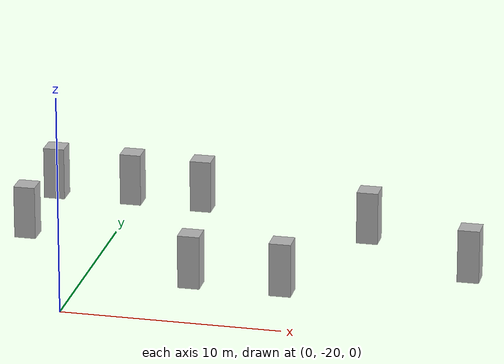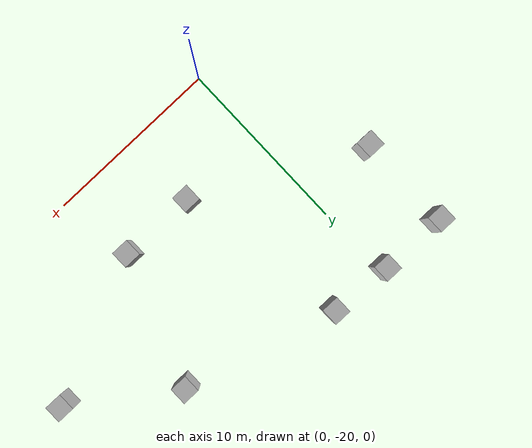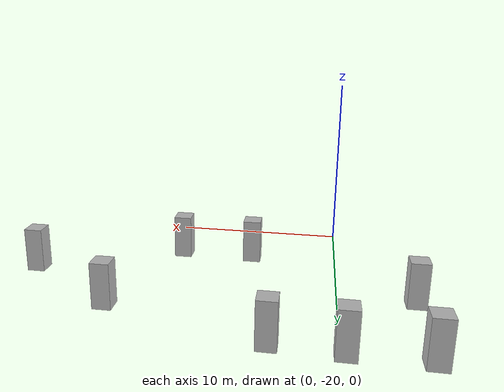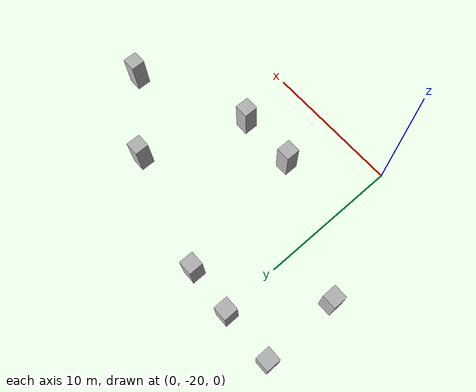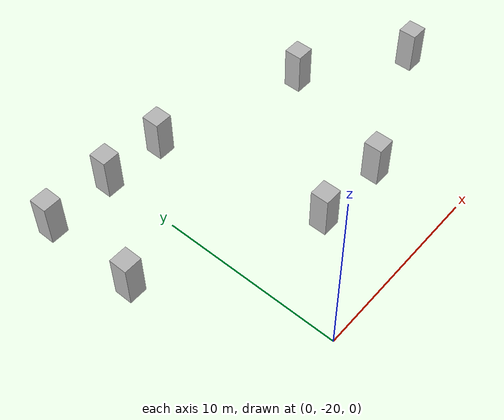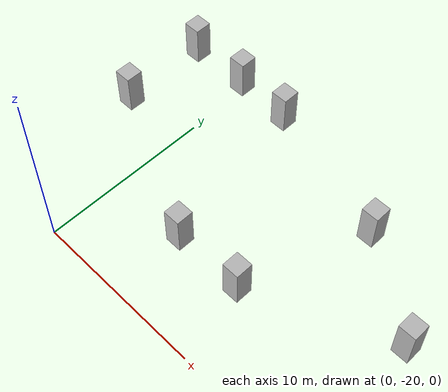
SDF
<sdf version="1.6">
 <world name="default">
  <model name="unit_box_1">
   <pose>3.21722 -6.06351 1.25 -2e-06 -2e-06 0.001535</pose>
   <link name="link">
    <inertial>
     <mass>1</mass>
     <inertia>
      <ixx>0.166667</ixx>
      <ixy>0</ixy>
      <ixz>0</ixz>
      <iyy>0.166667</iyy>
      <iyz>0</iyz>
      <izz>0.166667</izz>
     </inertia>
    </inertial>
    <collision name="collision"><geometry><box><size>1 1 2.5</size></box></geometry></collision>
    <visual name="visual">
     <geometry><box><size>1 1 2.5</size></box></geometry>
     <material>
      <script>
       <uri>file://media/materials/scripts/wallpaper.material</uri>
       <name>wallpaper/wallpaper16</name>
      </script>
     </material>
    </visual>
   </link>
  </model>
  <model name="unit_box_2">
   <pose>-4.00305 -5.83578 1.25 2e-06 2e-06 0.001369</pose>
   <link name="link">
    <inertial>
     <mass>1</mass>
     <inertia>
      <ixx>0.166667</ixx>
      <ixy>0</ixy>
      <ixz>0</ixz>
      <iyy>0.166667</iyy>
      <iyz>0</iyz>
      <izz>0.166667</izz>
     </inertia>
    </inertial>
    <collision name="collision"><geometry><box><size>1 1 2.5</size></box></geometry></collision>
    <visual name="visual">
     <geometry><box><size>1 1 2.5</size></box></geometry>
     <material>
      <script>
       <uri>file://media/materials/scripts/wallpaper.material</uri>
       <name>wallpaper/wallpaper17</name>
      </script>
     </material>
    </visual>
   </link>
  </model>
  <model name="unit_box_3">
   <pose>4.91204 -15.5884 1.25 -2e-06 -2e-06 0.001535</pose>
   <link name="link">
    <inertial>
     <mass>1</mass>
     <inertia>
      <ixx>0.166667</ixx>
      <ixy>0</ixy>
      <ixz>0</ixz>
      <iyy>0.166667</iyy>
      <iyz>0</iyz>
      <izz>0.166667</izz>
     </inertia>
    </inertial>
    <collision name="collision"><geometry><box><size>1 1 2.5</size></box></geometry></collision>
    <visual name="visual">
     <geometry><box><size>1 1 2.5</size></box></geometry>
     <material>
      <script>
       <uri>file://media/materials/scripts/wallpaper.material</uri>
       <name>wallpaper/wallpaper18</name>
      </script>
     </material>
    </visual>
   </link>
  </model>
  <model name="unit_box_4">
   <pose>17.0497 -12.1602 1.25 2e-06 2e-06 0.001369</pose>
   <link name="link">
    <inertial>
     <mass>1</mass>
     <inertia>
      <ixx>0.166667</ixx>
      <ixy>0</ixy>
      <ixz>0</ixz>
      <iyy>0.166667</iyy>
      <iyz>0</iyz>
      <izz>0.166667</izz>
     </inertia>
    </inertial>
    <collision name="collision"><geometry><box><size>1 1 2.5</size></box></geometry></collision>
    <visual name="visual">
     <geometry><box><size>1 1 2.5</size></box></geometry>
     <material>
      <script>
       <uri>file://media/materials/scripts/wallpaper.material</uri>
       <name>wallpaper/wallpaper19</name>
      </script>
     </material>
    </visual>
   </link>
  </model>
  <model name="unit_box_6">
   <pose>-0.246554 -5.87142 1.25 2e-06 2e-06 0.001369</pose>
   <link name="link">
    <inertial>
     <mass>1</mass>
     <inertia>
      <ixx>0.166667</ixx>
      <ixy>0</ixy>
      <ixz>0</ixz>
      <iyy>0.166667</iyy>
      <iyz>0</iyz>
      <izz>0.166667</izz>
     </inertia>
    </inertial>
    <collision name="collision"><geometry><box><size>1 1 2.5</size></box></geometry></collision>
    <visual name="visual">
     <geometry><box><size>1 1 2.5</size></box></geometry>
     <material>
      <script>
       <uri>file://media/materials/scripts/wallpaper.material</uri>
       <name>wallpaper/wallpaper19</name>
      </script>
     </material>
    </visual>
   </link>
  </model>
  <model name="unit_box_8">
   <pose>11.6983 -8.43474 1.25 2e-06 2e-06 0.001369</pose>
   <link name="link">
    <inertial>
     <mass>1</mass>
     <inertia>
      <ixx>0.166667</ixx>
      <ixy>0</ixy>
      <ixz>0</ixz>
      <iyy>0.166667</iyy>
      <iyz>0</iyz>
      <izz>0.166667</izz>
     </inertia>
    </inertial>
    <collision name="collision"><geometry><box><size>1 1 2.5</size></box></geometry></collision>
    <visual name="visual">
     <geometry><box><size>1 1 2.5</size></box></geometry>
     <material>
      <script>
       <uri>file://media/materials/scripts/wallpaper.material</uri>
       <name>wallpaper/wallpaper17</name>
      </script>
     </material>
    </visual>
   </link>
  </model>
  <model name="unit_box_10">
   <pose>-3.95937 -11.1562 1.25 2e-06 2e-06 0.001369</pose>
   <link name="link">
    <inertial>
     <mass>1</mass>
     <inertia>
      <ixx>0.166667</ixx>
      <ixy>0</ixy>
      <ixz>0</ixz>
      <iyy>0.166667</iyy>
      <iyz>0</iyz>
      <izz>0.166667</izz>
     </inertia>
    </inertial>
    <collision name="collision"><geometry><box><size>1 1 2.5</size></box></geometry></collision>
    <visual name="visual">
     <geometry><box><size>1 1 2.5</size></box></geometry>
     <material>
      <script>
       <uri>file://media/materials/scripts/wallpaper.material</uri>
       <name>wallpaper/wallpaper15</name>
      </script>
     </material>
    </visual>
   </link>
  </model>
  <model name="unit_box_11">
   <pose>9.10796 -15.6204 1.25 -2e-06 -2e-06 0.001535</pose>
   <link name="link">
    <inertial>
     <mass>1</mass>
     <inertia>
      <ixx>0.166667</ixx>
      <ixy>0</ixy>
      <ixz>0</ixz>
      <iyy>0.166667</iyy>
      <iyz>0</iyz>
      <izz>0.166667</izz>
     </inertia>
    </inertial>
    <collision name="collision"><geometry><box><size>1 1 2.5</size></box></geometry></collision>
    <visual name="visual">
     <geometry><box><size>1 1 2.5</size></box></geometry>
     <material>
      <script>
       <uri>file://media/materials/scripts/wallpaper.material</uri>
       <name>wallpaper/wallpaper14</name>
      </script>
     </material>
    </visual>
   </link>
  </model>
 </world>
</sdf>
